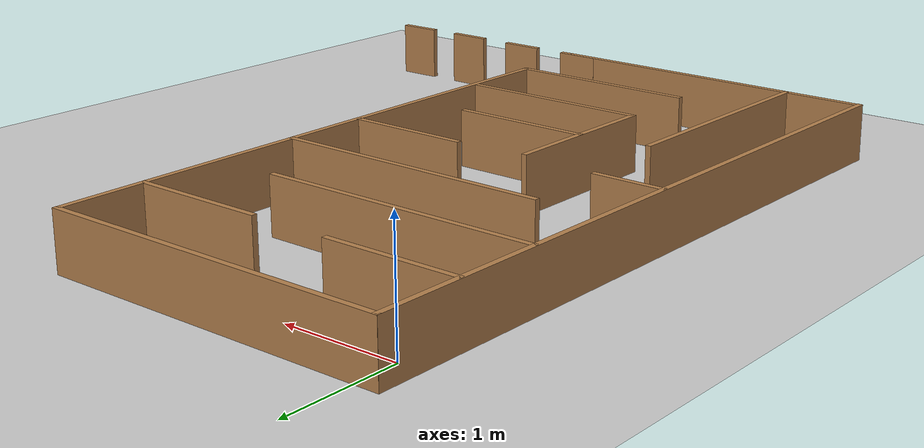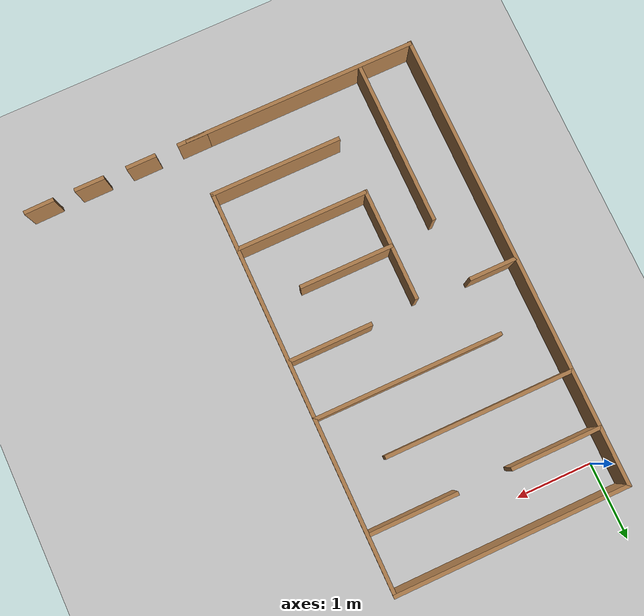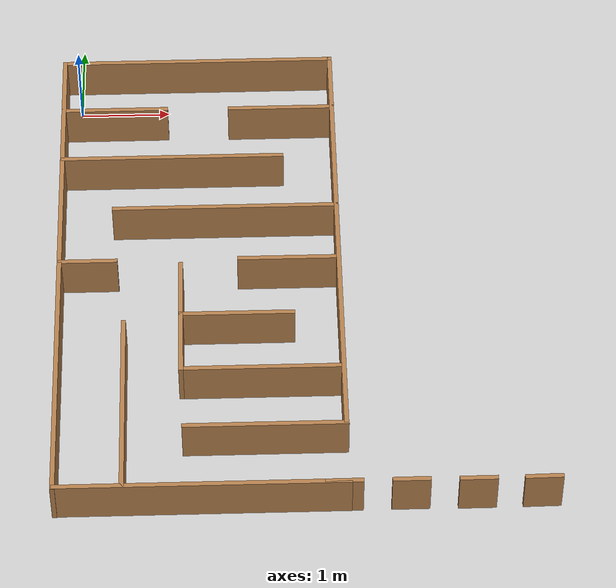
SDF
<sdf version="1.6">
 <world name="default">
  <light name="sun" type="directional">
   <pose>0 0 10 0 -0 0</pose>
   <diffuse>0.8 0.8 0.8 1</diffuse>
   <specular>0.2 0.2 0.2 1</specular>
   <attenuation>
    <range>1000</range>
    <constant>0.9</constant>
    <linear>0.01</linear>
    <quadratic>0.001</quadratic>
   </attenuation>
   <direction>-0.5 0.1 -0.9</direction>
  </light>
  <model name="ground_plane">
   <static>1</static>
   <link name="link">
    <collision name="collision">
     <geometry><plane><normal>0 0 1</normal><size>100 100</size></plane></geometry>
     <surface>
      <contact><collide_bitmask>65535</collide_bitmask></contact>
      <friction><ode><mu>100</mu><mu2>50</mu2></ode></friction>
     </surface>
    </collision>
    <visual name="visual">
     <cast_shadows>0</cast_shadows>
     <geometry><plane><normal>0 0 1</normal><size>100 100</size></plane></geometry>
     <material>
      <script><uri>file://media/materials/scripts/gazebo.material</uri><name>Gazebo/Grey</name></script>
     </material>
    </visual>
   </link>
  </model>
  <gravity>0 0 -9.8</gravity>
  <magnetic_field>6e-06 2.3e-05 -4.2e-05</magnetic_field>
  <atmosphere type="adiabatic"/>
  <physics name="default_physics" default="0" type="ode">
   <max_step_size>0.001</max_step_size>
   <real_time_factor>1</real_time_factor>
   <real_time_update_rate>1000</real_time_update_rate>
  </physics>
  <scene><ambient>0.4 0.4 0.4 1</ambient><background>0.7 0.7 0.7 1</background><shadows>1</shadows></scene>
  <audio><device>default</device></audio>
  <spherical_coordinates>
   <surface_model>EARTH_WGS84</surface_model>
   <latitude_deg>0</latitude_deg>
   <longitude_deg>0</longitude_deg>
   <elevation>0</elevation>
   <heading_deg>0</heading_deg>
  </spherical_coordinates>
  <model name="assignment_maze">
   <pose>1.34548 -2.65987 0 0 0 -1.57035</pose>
   <link name="Wall_18">
    <collision name="Wall_18_Collision">
     <geometry><box><size>6.1 0.05 0.5</size></box></geometry>
     <pose>0 0 0.25 0 -0 0</pose>
    </collision>
    <visual name="Wall_18_Visual">
     <pose>0 0 0.25 0 -0 0</pose>
     <geometry><box><size>6.1 0.05 0.5</size></box></geometry>
     <material>
      <script><uri>file://media/materials/scripts/gazebo.material</uri><name>Gazebo/Wood</name></script>
      <ambient>1 1 1 1</ambient>
     </material>
     <meta><layer>0</layer></meta>
    </visual>
    <pose>0.0005 -1.52975 0 0 -0 0</pose>
   </link>
   <link name="Wall_20">
    <collision name="Wall_20_Collision">
     <geometry><box><size>3.1 0.05 0.5</size></box></geometry>
     <pose>0 0 0.25 0 -0 0</pose>
    </collision>
    <visual name="Wall_20_Visual">
     <pose>0 0 0.25 0 -0 0</pose>
     <geometry><box><size>3.1 0.05 0.5</size></box></geometry>
     <material>
      <script><uri>file://media/materials/scripts/gazebo.material</uri><name>Gazebo/Wood</name></script>
      <ambient>1 1 1 1</ambient>
     </material>
     <meta><layer>0</layer></meta>
    </visual>
    <pose>-3.0255 -0.00375 0 0 -0 1.5708</pose>
   </link>
   <link name="Wall_22">
    <collision name="Wall_22_Collision">
     <geometry><box><size>3.1 0.05 0.5</size></box></geometry>
     <pose>0 0 0.25 0 -0 0</pose>
    </collision>
    <visual name="Wall_22_Visual">
     <pose>0 0 0.25 0 -0 0</pose>
     <geometry><box><size>3.1 0.05 0.5</size></box></geometry>
     <material>
      <script><uri>file://media/materials/scripts/gazebo.material</uri><name>Gazebo/Wood</name></script>
      <ambient>1 1 1 1</ambient>
     </material>
     <meta><layer>0</layer></meta>
    </visual>
    <pose>3.02 0.00475 0 0 -0 -1.5708</pose>
   </link>
   <link name="Wall_24">
    <collision name="Wall_24_Collision">
     <geometry><box><size>5.32 0.05 0.5</size></box></geometry>
     <pose>0 0 0.25 0 -0 0</pose>
    </collision>
    <visual name="Wall_24_Visual">
     <pose>0 0 0.25 0 -0 0</pose>
     <geometry><box><size>5.32 0.05 0.5</size></box></geometry>
     <material>
      <script><uri>file://media/materials/scripts/gazebo.material</uri><name>Gazebo/Wood</name></script>
      <ambient>1 1 1 1</ambient>
     </material>
     <meta><layer>0</layer></meta>
    </visual>
    <pose>-0.3905 1.52125 0 0 -0 0</pose>
   </link>
   <link name="Wall_27">
    <collision name="Wall_27_Collision">
     <geometry><box><size>1.2 0.05 0.5</size></box></geometry>
     <pose>0 0 0.25 0 -0 0</pose>
    </collision>
    <visual name="Wall_27_Visual">
     <pose>0 0 0.25 0 -0 0</pose>
     <geometry><box><size>1.2 0.05 0.5</size></box></geometry>
     <material>
      <script><uri>file://media/materials/scripts/gazebo.material</uri><name>Gazebo/Wood</name></script>
      <ambient>1 1 1 1</ambient>
     </material>
     <meta><layer>0</layer></meta>
    </visual>
    <pose>-2.277 -0.94625 0 0 -0 1.5708</pose>
   </link>
   <link name="Wall_29">
    <collision name="Wall_29_Collision">
     <geometry><box><size>1.2 0.05 0.5</size></box></geometry>
     <pose>0 0 0.25 0 -0 0</pose>
    </collision>
    <visual name="Wall_29_Visual">
     <pose>0 0 0.25 0 -0 0</pose>
     <geometry><box><size>1.2 0.05 0.5</size></box></geometry>
     <material>
      <script><uri>file://media/materials/scripts/gazebo.material</uri><name>Gazebo/Wood</name></script>
      <ambient>1 1 1 1</ambient>
     </material>
     <meta><layer>0</layer></meta>
    </visual>
    <pose>-2.2665 0.93925 0 0 -0 -1.5708</pose>
   </link>
   <link name="Wall_31">
    <collision name="Wall_31_Collision">
     <geometry><box><size>2.5 0.05 0.5</size></box></geometry>
     <pose>0 0 0.25 0 -0 0</pose>
    </collision>
    <visual name="Wall_31_Visual">
     <pose>0 0 0.25 0 -0 0</pose>
     <geometry><box><size>2.5 0.05 0.5</size></box></geometry>
     <material>
      <script><uri>file://media/materials/scripts/gazebo.material</uri><name>Gazebo/Wood</name></script>
      <ambient>1 1 1 1</ambient>
     </material>
     <meta><layer>0</layer></meta>
    </visual>
    <pose>-1.5305 -0.29725 0 0 -0 1.5708</pose>
   </link>
   <link name="Wall_33">
    <collision name="Wall_33_Collision">
     <geometry><box><size>2.5 0.05 0.5</size></box></geometry>
     <pose>0 0 0.25 0 -0 0</pose>
    </collision>
    <visual name="Wall_33_Visual">
     <pose>0 0 0.25 0 -0 0</pose>
     <geometry><box><size>2.5 0.05 0.5</size></box></geometry>
     <material>
      <script><uri>file://media/materials/scripts/gazebo.material</uri><name>Gazebo/Wood</name></script>
      <ambient>1 1 1 1</ambient>
     </material>
     <meta><layer>0</layer></meta>
    </visual>
    <pose>-0.7715 0.28825 0 0 -0 -1.5708</pose>
   </link>
   <link name="Wall_35">
    <collision name="Wall_35_Collision">
     <geometry><box><size>1.1 0.05 0.5</size></box></geometry>
     <pose>0 0 0.25 0 -0 0</pose>
    </collision>
    <visual name="Wall_35_Visual">
     <pose>0 0 0.25 0 -0 0</pose>
     <geometry><box><size>1.1 0.05 0.5</size></box></geometry>
     <material>
      <script><uri>file://media/materials/scripts/gazebo.material</uri><name>Gazebo/Wood</name></script>
      <ambient>1 1 1 1</ambient>
     </material>
     <meta><layer>0</layer></meta>
    </visual>
    <pose>-0.0125 0.963087 0 0 -0 1.5708</pose>
   </link>
   <link name="Wall_37">
    <collision name="Wall_37_Collision">
     <geometry><box><size>0.65 0.05 0.5</size></box></geometry>
     <pose>0 0 0.25 0 -0 0</pose>
    </collision>
    <visual name="Wall_37_Visual">
     <pose>0 0 0.25 0 -0 0</pose>
     <geometry><box><size>0.65 0.05 0.5</size></box></geometry>
     <material>
      <script><uri>file://media/materials/scripts/gazebo.material</uri><name>Gazebo/Wood</name></script>
      <ambient>1 1 1 1</ambient>
     </material>
     <meta><layer>0</layer></meta>
    </visual>
    <pose>-0.0135 -1.21994 0 0 -0 -1.5708</pose>
   </link>
   <link name="Wall_39">
    <collision name="Wall_39_Collision">
     <geometry><box><size>1.75 0.05 0.5</size></box></geometry>
     <pose>0 0 0.25 0 -0 0</pose>
    </collision>
    <visual name="Wall_39_Visual">
     <pose>0 0 0.25 0 -0 0</pose>
     <geometry><box><size>1.75 0.05 0.5</size></box></geometry>
     <material>
      <script><uri>file://media/materials/scripts/gazebo.material</uri><name>Gazebo/Wood</name></script>
      <ambient>1 1 1 1</ambient>
     </material>
     <meta><layer>0</layer></meta>
    </visual>
    <pose>1.5055 0.66325 0 0 -0 -1.5708</pose>
   </link>
   <link name="Wall_45">
    <collision name="Wall_45_Collision">
     <geometry><box><size>1.5 0.05 0.5</size></box></geometry>
     <pose>0 0 0.25 0 -0 0</pose>
    </collision>
    <visual name="Wall_45_Visual">
     <pose>0 0 0.25 0 -0 0</pose>
     <geometry><box><size>1.5 0.05 0.5</size></box></geometry>
     <material>
      <script><uri>file://media/materials/scripts/gazebo.material</uri><name>Gazebo/Wood</name></script>
      <ambient>1 1 1 1</ambient>
     </material>
     <meta><layer>0</layer></meta>
    </visual>
    <pose>0.7815 -0.206975 0 0 -0 3.14159</pose>
   </link>
   <link name="Wall_47">
    <collision name="Wall_47_Collision">
     <geometry><box><size>1.25 0.05 0.5</size></box></geometry>
     <pose>0 0 0.25 0 -0 0</pose>
    </collision>
    <visual name="Wall_47_Visual">
     <pose>0 0 0.25 0 -0 0</pose>
     <geometry><box><size>1.25 0.05 0.5</size></box></geometry>
     <material>
      <script><uri>file://media/materials/scripts/gazebo.material</uri><name>Gazebo/Wood</name></script>
      <ambient>1 1 1 1</ambient>
     </material>
     <meta><layer>0</layer></meta>
    </visual>
    <pose>0.7585 0.399525 0 0 -0 -1.5708</pose>
   </link>
   <link name="Wall_49">
    <collision name="Wall_49_Collision">
     <geometry><box><size>1.75 0.05 0.5</size></box></geometry>
     <pose>0 0 0.25 0 -0 0</pose>
    </collision>
    <visual name="Wall_49_Visual">
     <pose>0 0 0.25 0 -0 0</pose>
     <geometry><box><size>1.75 0.05 0.5</size></box></geometry>
     <material>
      <script><uri>file://media/materials/scripts/gazebo.material</uri><name>Gazebo/Wood</name></script>
      <ambient>1 1 1 1</ambient>
     </material>
     <meta><layer>0</layer></meta>
    </visual>
    <pose>2.2655 0.67475 0 0 -0 -1.5708</pose>
   </link>
   <link name="Wall_51">
    <collision name="Wall_51_Collision">
     <geometry><box><size>2.2 0.05 0.5</size></box></geometry>
     <pose>0 0 0.25 0 -0 0</pose>
    </collision>
    <visual name="Wall_51_Visual">
     <pose>0 0 0.25 0 -0 0</pose>
     <geometry><box><size>2.2 0.05 0.5</size></box></geometry>
     <material>
      <script><uri>file://media/materials/scripts/gazebo.material</uri><name>Gazebo/Wood</name></script>
      <ambient>1 1 1 1</ambient>
     </material>
     <meta><layer>0</layer></meta>
    </visual>
    <pose>1.934 -0.820313 0 0 -0 0</pose>
   </link>
   <static>1</static>
  </model>
  <model name="assignment4">
   <pose>2.81869 -5.67789 0 0 -0 1.57526</pose>
   <link name="Wall_1">
    <collision name="Wall_1_Collision">
     <geometry><box><size>0.4 0.05 0.5</size></box></geometry>
     <pose>0 0 0.25 0 -0 0</pose>
    </collision>
    <visual name="Wall_1_Visual">
     <pose>0 0 0.25 0 -0 0</pose>
     <geometry><box><size>0.4 0.05 0.5</size></box></geometry>
     <material>
      <script><uri>file://media/materials/scripts/gazebo.material</uri><name>Gazebo/Wood</name></script>
      <ambient>1 1 1 1</ambient>
     </material>
     <meta><layer>0</layer></meta>
    </visual>
    <pose>0 0 0 0 -0 -1.5708</pose>
   </link>
   <static>1</static>
  </model>
  <model name="assignment4_0">
   <pose>3.51075 -5.67592 0 0 0 -1.56645</pose>
   <link name="Wall_1">
    <collision name="Wall_1_Collision">
     <geometry><box><size>0.4 0.05 0.5</size></box></geometry>
     <pose>0 0 0.25 0 -0 0</pose>
    </collision>
    <visual name="Wall_1_Visual">
     <pose>0 0 0.25 0 -0 0</pose>
     <geometry><box><size>0.4 0.05 0.5</size></box></geometry>
     <material>
      <script><uri>file://media/materials/scripts/gazebo.material</uri><name>Gazebo/Wood</name></script>
      <ambient>1 1 1 1</ambient>
     </material>
     <meta><layer>0</layer></meta>
    </visual>
    <pose>0 0 0 0 -0 -1.5708</pose>
   </link>
   <static>1</static>
  </model>
  <model name="assignment4_1">
   <pose>4.20133 -5.68088 0 0 -0 1.57308</pose>
   <link name="Wall_1">
    <collision name="Wall_1_Collision">
     <geometry><box><size>0.4 0.05 0.5</size></box></geometry>
     <pose>0 0 0.25 0 -0 0</pose>
    </collision>
    <visual name="Wall_1_Visual">
     <pose>0 0 0.25 0 -0 0</pose>
     <geometry><box><size>0.4 0.05 0.5</size></box></geometry>
     <material>
      <script><uri>file://media/materials/scripts/gazebo.material</uri><name>Gazebo/Wood</name></script>
      <ambient>1 1 1 1</ambient>
     </material>
     <meta><layer>0</layer></meta>
    </visual>
    <pose>0 0 0 0 -0 -1.5708</pose>
   </link>
   <static>1</static>
  </model>
  <model name="assignment4_2">
   <pose>4.87535 -5.67688 0 0 0 -1.55464</pose>
   <link name="Wall_1">
    <collision name="Wall_1_Collision">
     <geometry><box><size>0.4 0.05 0.5</size></box></geometry>
     <pose>0 0 0.25 0 -0 0</pose>
    </collision>
    <visual name="Wall_1_Visual">
     <pose>0 0 0.25 0 -0 0</pose>
     <geometry><box><size>0.4 0.05 0.5</size></box></geometry>
     <material>
      <script><uri>file://media/materials/scripts/gazebo.material</uri><name>Gazebo/Wood</name></script>
      <ambient>1 1 1 1</ambient>
     </material>
     <meta><layer>0</layer></meta>
    </visual>
    <pose>0 0 0 0 -0 -1.5708</pose>
   </link>
   <static>1</static>
  </model>
 </world>
</sdf>
